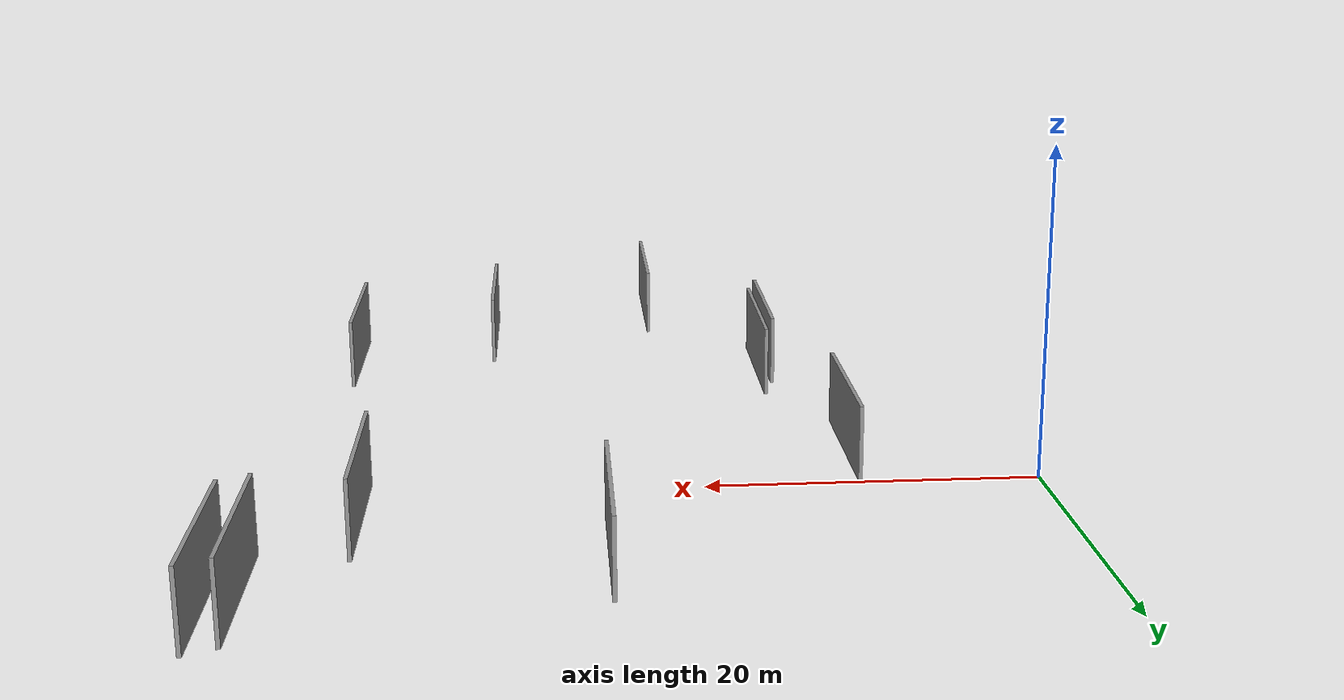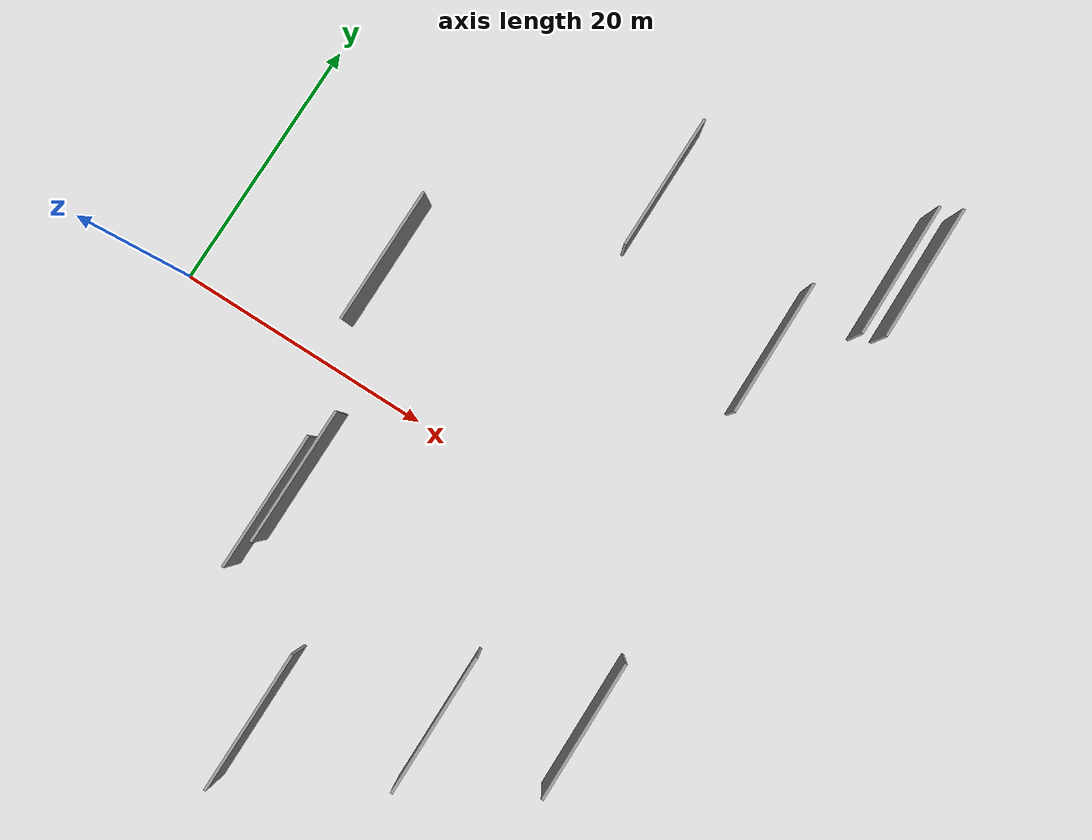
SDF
<sdf version="1.6">
 <world name="default">
  <scene>
   <sky><clouds><speed>12</speed></clouds></sky>
   <ambient>0.4 0.4 0.4 1</ambient>
   <background>0.7 0.7 0.7 1</background>
   <shadows>1</shadows>
  </scene>
  <gravity>0 0 -9.8066</gravity>
  <magnetic_field>6e-06 2.3e-05 -4.2e-05</magnetic_field>
  <physics default="0" name="default_physics" type="ode">
   <ode>
    <solver>
     <type>quick</type>
     <iters>10</iters>
     <sor>1.0</sor>
     <use_dynamic_moi_rescaling>0</use_dynamic_moi_rescaling>
    </solver>
    <constraints>
     <cfm>0</cfm>
     <erp>0.2</erp>
     <contact_max_correcting_vel>100</contact_max_correcting_vel>
     <contact_surface_layer>0.001</contact_surface_layer>
    </constraints>
   </ode>
   <max_step_size>0.004</max_step_size>
   <real_time_factor>1</real_time_factor>
   <real_time_update_rate>250</real_time_update_rate>
  </physics>
  <light name="sun" type="directional">
   <pose>0 0 10 0 0 0</pose>
   <diffuse>0.8 0.8 0.8 1</diffuse>
   <specular>0.2 0.2 0.2 1</specular>
   <attenuation>
    <range>1000</range>
    <constant>0.9</constant>
    <linear>0.01</linear>
    <quadratic>0.001</quadratic>
   </attenuation>
   <direction>-0.5 0.1 -0.9</direction>
  </light>
  <model name="grey_wall_1">
   <static>1</static>
   <pose>32.4433 -15.3387 5.0 0.000000 0.000000 1.570796</pose>
   <link name="link">
    <pose>0 0 2.00 0 0 0</pose>
    <collision name="collision"><geometry><box><size>10.00 0.2 4.00</size></box></geometry></collision>
    <visual name="visual">
     <cast_shadows>0</cast_shadows>
     <geometry><box><size>10.00 0.2 4.00</size></box></geometry>
     <material>
      <script>
       <uri>model://grey_wall/materials/scripts</uri>
       <uri>model://grey_wall/materials/textures</uri>
       <name>vrc/grey_wall</name>
      </script>
     </material>
    </visual>
   </link>
  </model>
  <model name="grey_wall_2">
   <static>1</static>
   <pose>15.5653 -9.3104 5.0 0.000000 0.000000 1.570796</pose>
   <link name="link">
    <pose>0 0 2.00 0 0 0</pose>
    <collision name="collision"><geometry><box><size>10.00 0.2 4.00</size></box></geometry></collision>
    <visual name="visual">
     <cast_shadows>0</cast_shadows>
     <geometry><box><size>10.00 0.2 4.00</size></box></geometry>
     <material>
      <script>
       <uri>model://grey_wall/materials/scripts</uri>
       <uri>model://grey_wall/materials/textures</uri>
       <name>vrc/grey_wall</name>
      </script>
     </material>
    </visual>
   </link>
  </model>
  <model name="grey_wall_3">
   <static>1</static>
   <pose>16.2045 -7.0080 5.0 0.000000 0.000000 1.570796</pose>
   <link name="link">
    <pose>0 0 2.00 0 0 0</pose>
    <collision name="collision"><geometry><box><size>10.00 0.2 4.00</size></box></geometry></collision>
    <visual name="visual">
     <cast_shadows>0</cast_shadows>
     <geometry><box><size>10.00 0.2 4.00</size></box></geometry>
     <material>
      <script>
       <uri>model://grey_wall/materials/scripts</uri>
       <uri>model://grey_wall/materials/textures</uri>
       <name>vrc/grey_wall</name>
      </script>
     </material>
    </visual>
   </link>
  </model>
  <model name="grey_wall_4">
   <static>1</static>
   <pose>22.3801 -21.4995 5.0 0.000000 0.000000 1.570796</pose>
   <link name="link">
    <pose>0 0 2.00 0 0 0</pose>
    <collision name="collision"><geometry><box><size>10.00 0.2 4.00</size></box></geometry></collision>
    <visual name="visual">
     <cast_shadows>0</cast_shadows>
     <geometry><box><size>10.00 0.2 4.00</size></box></geometry>
     <material>
      <script>
       <uri>model://grey_wall/materials/scripts</uri>
       <uri>model://grey_wall/materials/textures</uri>
       <name>vrc/grey_wall</name>
      </script>
     </material>
    </visual>
   </link>
  </model>
  <model name="grey_wall_5">
   <static>1</static>
   <pose>42.4860 25.6687 5.0 0.000000 0.000000 1.570796</pose>
   <link name="link">
    <pose>0 0 2.00 0 0 0</pose>
    <collision name="collision"><geometry><box><size>10.00 0.2 4.00</size></box></geometry></collision>
    <visual name="visual">
     <cast_shadows>0</cast_shadows>
     <geometry><box><size>10.00 0.2 4.00</size></box></geometry>
     <material>
      <script>
       <uri>model://grey_wall/materials/scripts</uri>
       <uri>model://grey_wall/materials/textures</uri>
       <name>vrc/grey_wall</name>
      </script>
     </material>
    </visual>
   </link>
  </model>
  <model name="grey_wall_6">
   <static>1</static>
   <pose>43.9195 26.3576 5.0 0.000000 0.000000 1.570796</pose>
   <link name="link">
    <pose>0 0 2.00 0 0 0</pose>
    <collision name="collision"><geometry><box><size>10.00 0.2 4.00</size></box></geometry></collision>
    <visual name="visual">
     <cast_shadows>0</cast_shadows>
     <geometry><box><size>10.00 0.2 4.00</size></box></geometry>
     <material>
      <script>
       <uri>model://grey_wall/materials/scripts</uri>
       <uri>model://grey_wall/materials/textures</uri>
       <name>vrc/grey_wall</name>
      </script>
     </material>
    </visual>
   </link>
  </model>
  <model name="grey_wall_7">
   <static>1</static>
   <pose>13.1367 8.2173 5.0 0.000000 0.000000 1.570796</pose>
   <link name="link">
    <pose>0 0 2.00 0 0 0</pose>
    <collision name="collision"><geometry><box><size>10.00 0.2 4.00</size></box></geometry></collision>
    <visual name="visual">
     <cast_shadows>0</cast_shadows>
     <geometry><box><size>10.00 0.2 4.00</size></box></geometry>
     <material>
      <script>
       <uri>model://grey_wall/materials/scripts</uri>
       <uri>model://grey_wall/materials/textures</uri>
       <name>vrc/grey_wall</name>
      </script>
     </material>
    </visual>
   </link>
  </model>
  <model name="grey_wall_8">
   <static>1</static>
   <pose>26.2453 22.3532 5.0 0.000000 0.000000 1.570796</pose>
   <link name="link">
    <pose>0 0 2.00 0 0 0</pose>
    <collision name="collision"><geometry><box><size>10.00 0.2 4.00</size></box></geometry></collision>
    <visual name="visual">
     <cast_shadows>0</cast_shadows>
     <geometry><box><size>10.00 0.2 4.00</size></box></geometry>
     <material>
      <script>
       <uri>model://grey_wall/materials/scripts</uri>
       <uri>model://grey_wall/materials/textures</uri>
       <name>vrc/grey_wall</name>
      </script>
     </material>
    </visual>
   </link>
  </model>
  <model name="grey_wall_9">
   <static>1</static>
   <pose>40.7129 -10.5756 5.0 0.000000 0.000000 1.570796</pose>
   <link name="link">
    <pose>0 0 2.00 0 0 0</pose>
    <collision name="collision"><geometry><box><size>10.00 0.2 4.00</size></box></geometry></collision>
    <visual name="visual">
     <cast_shadows>0</cast_shadows>
     <geometry><box><size>10.00 0.2 4.00</size></box></geometry>
     <material>
      <script>
       <uri>model://grey_wall/materials/scripts</uri>
       <uri>model://grey_wall/materials/textures</uri>
       <name>vrc/grey_wall</name>
      </script>
     </material>
    </visual>
   </link>
  </model>
  <model name="grey_wall_10">
   <static>1</static>
   <pose>38.1212 16.8165 5.0 0.000000 0.000000 1.570796</pose>
   <link name="link">
    <pose>0 0 2.00 0 0 0</pose>
    <collision name="collision"><geometry><box><size>10.00 0.2 4.00</size></box></geometry></collision>
    <visual name="visual">
     <cast_shadows>0</cast_shadows>
     <geometry><box><size>10.00 0.2 4.00</size></box></geometry>
     <material>
      <script>
       <uri>model://grey_wall/materials/scripts</uri>
       <uri>model://grey_wall/materials/textures</uri>
       <name>vrc/grey_wall</name>
      </script>
     </material>
    </visual>
   </link>
  </model>
 </world>
</sdf>
